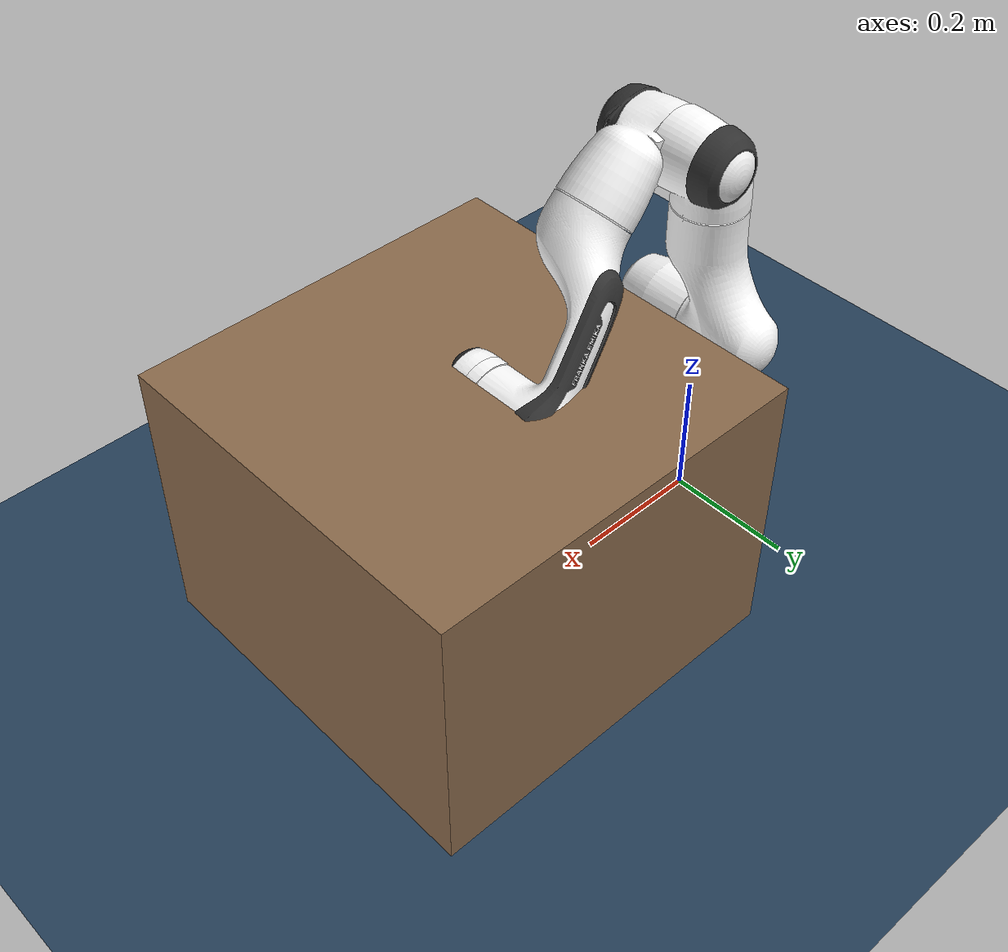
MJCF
<mujoco model="fr3 osc scene">
  <compiler angle="radian" meshdir="assets" />

  <option integrator="implicitfast" />

  <default>
    <default class="fr3">

      <joint damping="0.21" armature="0.195" frictionloss="1.137" />
      <position inheritrange="1" />
      <default class="visual">
        <geom type="mesh" group="2" contype="0" conaffinity="0" />
      </default>
      <default class="collision">
        <geom type="mesh" group="3" mass="0" density="0" />
      </default>
      <site size="0.001" rgba="0.5 0.5 0.5 0.3" group="4" />
    </default>
  </default>

  <asset>
    <material name="black" rgba=".2 .2 .2 1" />
    <material name="white" rgba="1 1 1 1" />
    <material name="red" rgba="1 0.072272 0.039546 1" />
    <material name="gray" rgba="0.863156 0.863156 0.863157 1" />
    <material name="button_green" rgba="0.102241 0.571125 0.102242 1" />
    <material name="button_red" rgba="0.520996 0.008023 0.013702 1" />
    <material name="button_blue" rgba="0.024157 0.445201 0.737911 1" />

    <mesh file="link0_0.obj" />
    <mesh file="link0_1.obj" />
    <mesh file="link0_2.obj" />
    <mesh file="link0_3.obj" />
    <mesh file="link0_4.obj" />
    <mesh file="link0_5.obj" />
    <mesh file="link0_6.obj" />
    <mesh file="link1.obj" />
    <mesh file="link2.obj" />
    <mesh file="link3_0.obj" />
    <mesh file="link3_1.obj" />
    <mesh file="link4_0.obj" />
    <mesh file="link4_1.obj" />
    <mesh file="link5_0.obj" />
    <mesh file="link5_1.obj" />
    <mesh file="link5_2.obj" />
    <mesh file="link6_0.obj" />
    <mesh file="link6_1.obj" />
    <mesh file="link6_2.obj" />
    <mesh file="link6_3.obj" />
    <mesh file="link6_4.obj" />
    <mesh file="link6_5.obj" />
    <mesh file="link6_6.obj" />
    <mesh file="link6_7.obj" />
    <mesh file="link7_0.obj" />
    <mesh file="link7_1.obj" />
    <mesh file="link7_2.obj" />
    <mesh file="link7_3.obj" />

    <mesh name="link0_coll" file="link0.stl" />
    <mesh name="link1_coll" file="link1.stl" />
    <mesh name="link2_coll" file="link2.stl" />
    <mesh name="link3_coll" file="link3.stl" />
    <mesh name="link4_coll" file="link4.stl" />
    <mesh name="link5_coll" file="link5.stl" />
    <mesh name="link6_coll" file="link6.stl" />
    <mesh name="link7_coll" file="link7.stl" />
  <texture type="skybox" builtin="gradient" rgb1="0.3 0.5 0.7" rgb2="0 0 0" width="512" height="3072" /><texture type="2d" name="groundplane" builtin="checker" mark="edge" rgb1="0.2 0.3 0.4" rgb2="0.1 0.2 0.3" markrgb="0.8 0.8 0.8" width="300" height="300" /><material name="groundplane" texture="groundplane" texuniform="true" texrepeat="5 5" reflectance="0.2" /><material name="table_mat" rgba="0.55 0.42 0.3 1" /></asset>

  <worldbody>
    <body name="base" childclass="fr3">
      <body name="fr3_link0">
        <geom mesh="link0_0" material="black" class="visual" />
        <geom mesh="link0_1" material="white" class="visual" />
        <geom mesh="link0_2" material="white" class="visual" />
        <geom mesh="link0_3" material="white" class="visual" />
        <geom mesh="link0_4" material="white" class="visual" />
        <geom mesh="link0_5" material="red" class="visual" />
        <geom mesh="link0_6" material="black" class="visual" />
        <geom name="fr3_link0_collision" mesh="link0_coll" class="collision" />
        <body name="fr3_link1" pos="0 0 0.333">
          <inertial pos="4.128e-07 -0.0181251 -0.0386036" quat="0.998098 -0.0605364 0.00380499 0.0110109" mass="2.92747" diaginertia="0.0239286 0.0227246 0.00610634" />
          <joint name="fr3_joint1" axis="0 0 1" range="-2.7437 2.7437" actuatorfrcrange="-87 87" />
          <geom name="fr3_link1_collision" class="collision" mesh="link1_coll" />
          <geom material="white" mesh="link1" class="visual" />
          <body name="fr3_link2" quat="1 -1 0 0">
            <inertial pos="0.00318289 -0.0743222 0.00881461" quat="0.502599 0.584437 -0.465998 0.434366" mass="2.93554" diaginertia="0.0629567 0.0411924 0.0246371" />
            <joint name="fr3_joint2" axis="0 0 1" range="-1.7837 1.7837" actuatorfrcrange="-87 87" />
            <geom material="white" mesh="link2" class="visual" />
            <geom name="fr3_link2_collision" class="collision" mesh="link2_coll" />
            <body name="fr3_link3" pos="0 -0.316 0" quat="1 1 0 0">
              <inertial pos="0.0407016 -0.00482006 -0.0289731" quat="0.921025 -0.244161 0.155272 0.260745" mass="2.2449" diaginertia="0.0267409 0.0189869 0.0171587" />
              <joint name="fr3_joint3" axis="0 0 1" range="-2.9007 2.9007" actuatorfrcrange="-87 87" />
              <geom mesh="link3_0" material="white" class="visual" />
              <geom mesh="link3_1" material="black" class="visual" />
              <geom name="fr3_link3_collision" class="collision" mesh="link3_coll" />
              <body name="fr3_link4" pos="0.0825 0 0" quat="0.2705980501 0.2705980501 0.6532814824 -0.6532814824">
                <inertial pos="-0.0459101 0.0630493 -0.00851879" quat="0.438018 0.803311 0.00937812 0.403414" mass="2.6156" diaginertia="0.05139 0.0372717 0.0160047" />
                <geom mesh="link4_0" material="white" class="visual" />
                <geom mesh="link4_1" material="black" class="visual" />
                <geom name="fr3_link4_collision" class="collision" mesh="link4_coll" />
                <body name="fr3_link5" pos="-0.0825 0.384 0" quat="1 -1 0 0">
                  <inertial pos="-0.00160396 0.0292536 -0.0972966" quat="0.919031 0.125604 0.0751531 -0.366003" mass="2.32712" diaginertia="0.0579335 0.0449144 0.0130634" />
                  <joint name="fr3_joint5" axis="0 0 1" range="-2.8065 2.8065" actuatorfrcrange="-12 12" armature="0.074" frictionloss="0.763" />
                  <geom mesh="link5_0" material="white" class="visual" />
                  <geom mesh="link5_1" material="white" class="visual" />
                  <geom mesh="link5_2" material="black" class="visual" />
                  <geom name="fr3_link5_collision" class="collision" mesh="link5_coll" />
                  <body name="fr3_link6" quat="1 1 0 0">
                    <inertial pos="0.0597131 -0.0410295 -0.0101693" quat="0.621301 0.552665 0.510011 0.220081" mass="1.81704" diaginertia="0.0175039 0.0161123 0.00193529" />
                    <joint name="fr3_joint6" axis="0 0 1" range="0.5445 4.5169" actuatorfrcrange="-12 12" armature="0.074" frictionloss="0.44" />
                    <geom mesh="link6_0" material="button_green" class="visual" />
                    <geom mesh="link6_1" material="white" class="visual" />
                    <geom mesh="link6_2" material="white" class="visual" />
                    <geom mesh="link6_3" material="gray" class="visual" />
                    <geom mesh="link6_4" material="button_red" class="visual" />
                    <geom mesh="link6_5" material="white" class="visual" />
                    <geom mesh="link6_6" material="black" class="visual" />
                    <geom mesh="link6_7" material="button_blue" class="visual" />
                    <geom name="fr3_link6_collision" class="collision" mesh="link6_coll" />
                    <body name="fr3_link7" pos="0.088 0 0" quat="1 1 0 0">
                      <inertial pos="0.00452258 0.00862619 -0.0161633" quat="0.727579 0.0978688 -0.24906 0.63168" mass="0.627143" diaginertia="0.000223836 0.000223642 5.64132e-07" />
                      <joint name="fr3_joint7" axis="0 0 1" range="-3.0159 3.0159" actuatorfrcrange="-12 12" armature="0.074" frictionloss="0.248" />
                      <geom mesh="link7_0" material="black" class="visual" />
                      <geom mesh="link7_1" material="white" class="visual" />
                      <geom mesh="link7_2" material="white" class="visual" />
                      <geom mesh="link7_3" material="black" class="visual" />
                      <geom name="fr3_link7_collision" class="collision" mesh="link7_coll" />
                      <site name="attachment_site" pos="0 0 0.107" />
                    <geom name="tool_tip" type="sphere" size="0.012" pos="0 0 0.107" rgba="0.9 0.2 0.2 1" group="2" friction="1.0 0.01 0.0001" condim="4" /></body>
                  </body>
                </body>
              </body>
            </body>
          </body>
        </body>
      </body>
    </body>
  <light pos="0.3 0 1.6" dir="0 0 -1" directional="true" /><geom name="floor" size="0 0 0.05" type="plane" material="groundplane" /><body name="table" pos="0.45 0 0.265"><geom name="table_top" type="box" size="0.28 0.28 0.21" material="table_mat" friction="1.0 0.01 0.0001" solref="0.05 1" solimp="0.9 0.95 0.01" /></body></worldbody>

  <actuator>
    <motor name="fr3_joint1" joint="fr3_joint1" ctrllimited="true" ctrlrange="-87 87" gear="1" /><motor name="fr3_joint2" joint="fr3_joint2" ctrllimited="true" ctrlrange="-87 87" gear="1" /><motor name="fr3_joint3" joint="fr3_joint3" ctrllimited="true" ctrlrange="-87 87" gear="1" /><motor name="fr3_joint5" joint="fr3_joint5" ctrllimited="true" ctrlrange="-12 12" gear="1" /><motor name="fr3_joint6" joint="fr3_joint6" ctrllimited="true" ctrlrange="-12 12" gear="1" /><motor name="fr3_joint7" joint="fr3_joint7" ctrllimited="true" ctrlrange="-12 12" gear="1" /></actuator>

  <contact>
    <exclude body1="fr3_link0" body2="fr3_link1" />
  </contact>

  <keyframe>
    <key name="home" qpos="0 -0.785398 0 -0.5 1.5708 0.785398" ctrl="0 -0.785398 0 -0.5 1.5708 0.785398" />
  </keyframe>
<sensor><force name="wrist_force" site="attachment_site" /><torque name="wrist_torque" site="attachment_site" /></sensor><visual><headlight diffuse="0.6 0.6 0.6" ambient="0.35 0.35 0.35" specular="0 0 0" /><rgba haze="0.15 0.25 0.35 1" /><global azimuth="130" elevation="-25" /></visual><statistic center="0.4 0 0.3" extent="1.0" /></mujoco>
